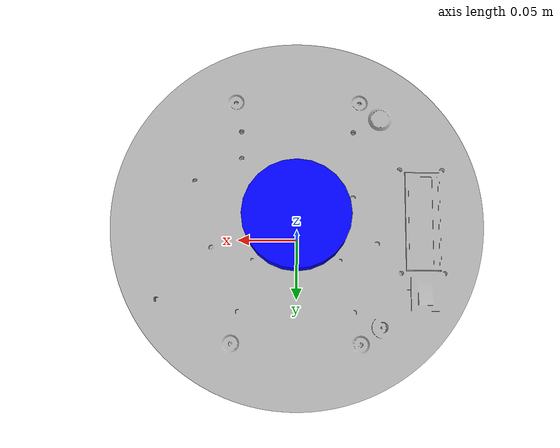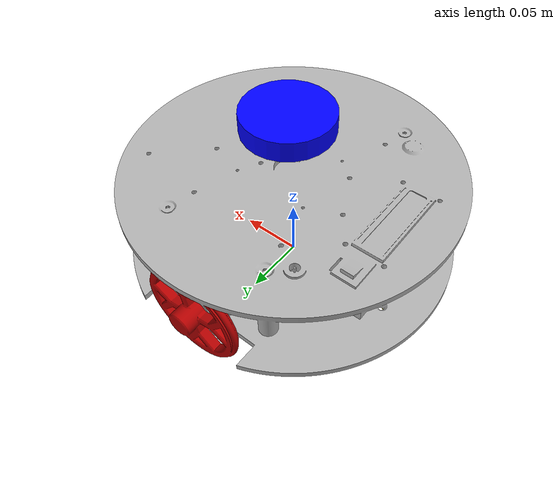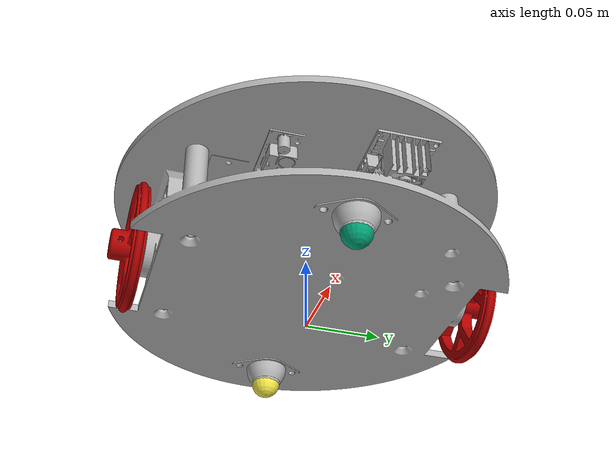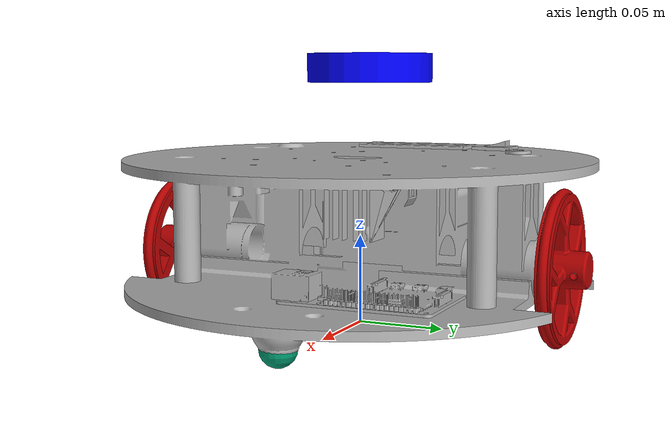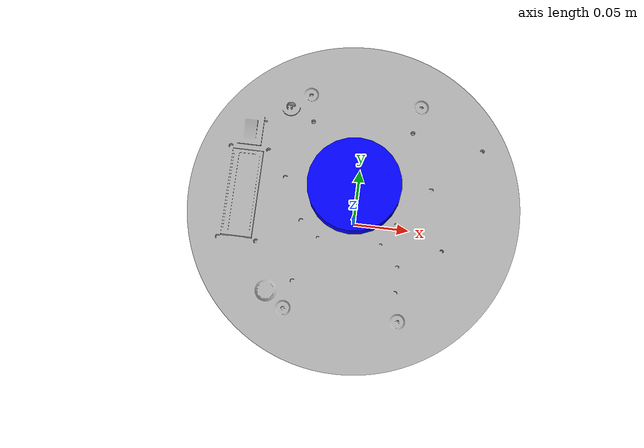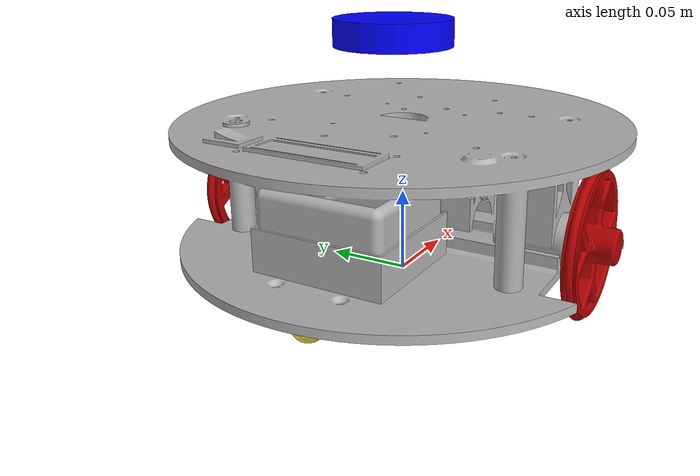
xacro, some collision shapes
<?xml version="1.0"?>
<robot xmlns:xacro="http://www.ros.org/wiki/xacro" name="rosni_robot">

  <xacro:include filename="$(find rosni2_description)/urdf/base/base.xacro"/>
  <xacro:include filename="$(find rosni2_description)/urdf/wheels/right_wheel.xacro"/>
  <xacro:include filename="$(find rosni2_description)/urdf/wheels/left_wheel.xacro"/>
  <xacro:include filename="$(find rosni2_description)/urdf/sensors/lidar.xacro"/>

  <xacro:include filename="$(find rosni2_description)/ros2_control/ros2_control.xacro"/>
  <xacro:include filename="$(find rosni2_description)/gazebo/rosni.gazebo.xacro"/>

  <link name="base_footprint" />

  <xacro:base name="base" parent="base_footprint">
    <origin xyz="0 0 0.02" rpy="0 0 -1.5707"/>
  </xacro:base>

  <xacro:right_wheel name="right_wheel" parent="base">
    <origin xyz="0.108 0 0.019" rpy="0 -1.5707 0"/>
  </xacro:right_wheel>

  <xacro:left_wheel name="left_wheel" parent="base">
    <origin xyz="-0.108 0 0.019" rpy="0 -1.5707 0"/>
  </xacro:left_wheel>

  <xacro:lidar parent="base">
    <origin xyz="-0.006 0 0.125" rpy="0 0 0"/>
  </xacro:lidar>

  <xacro:rosni_ros2_control/>
  <xacro:rosni_gazebo/>

</robot>

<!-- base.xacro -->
<robot xmlns:xacro="http://www.ros.org/wiki/xacro" name="rosni_robot">
  <xacro:macro name="base" params="name parent *origin">
    <link name="${name}_link">
       <inertial>
      <origin xyz="0 0 0" rpy="0 0 0"/>
      <mass value="8.2573504e-01"/>
      <inertia ixx="2.2124416e-03" ixy="-1.2294101e-05" ixz="3.4938785e-05"
               iyy="2.1193702e-03" iyz="-5.0120904e-06"
               izz="2.0064271e-03" />
    </inertial>
      <visual>
        <origin xyz="-0.1325 0.1325 -0.02" rpy="1.5707 0 0"/>
				<geometry>
        	<mesh filename="file://$(find rosni2_description)/meshes/base.stl" scale="0.001 0.001 0.001"/>
      	</geometry>
        <material name="gray">
          <color rgba="0.7 0.7 0.7 1"/>
        </material>
      </visual>
      <collision>
        <origin xyz="0. 0. 0.038" rpy="0 0 0"/>
				<geometry>
           <cylinder radius="0.13" length="0.08"/>
        </geometry>
      </collision>
    </link>

    <joint name="${name}_joint" type="fixed">
      <xacro:insert_block name="origin"/>
      <parent link="${parent}"/>
      <child link="${name}_link"/>
    </joint>

    <link name="crazy_wheel_front_link">
    <inertial>
      <origin xyz="0 0 0" />
      <mass value="0.005" />
      <inertia ixx="0.001" ixy="0.0" ixz="0.0"
               iyy="0.001" iyz="0.0"
               izz="0.001" />
    </inertial>
      <visual>
        <origin xyz="0.0 0.0 0.0" rpy="0 0 0"/>
				<geometry>
          <sphere radius="0.01"/>
        </geometry>
      </visual>
      <collision>
        <origin xyz="0.0 0.0 0.0" rpy="0 0 0"/>
				<geometry>
          <sphere radius="0.01"/>
        </geometry>
      </collision>
    </link>

    <joint name="crazy_front_joint" type="fixed">
      <origin xyz="0 0.1 -0.013" rpy="0 0 1.5707"/>
      <parent link="${name}_link"/>
      <child link="crazy_wheel_front_link"/>
    </joint>

    <link name="crazy_wheel_back_link">
    <inertial>
      <origin xyz="0 0 0" />
      <mass value="0.005" />
      <inertia ixx="0.001" ixy="0.0" ixz="0.0"
               iyy="0.001" iyz="0.0"
               izz="0.001" />
    </inertial>
      <visual>
        <origin xyz="0.0 0.0 0.0" rpy="0 0 0"/>
				<geometry>
          <sphere radius="0.01"/>
        </geometry>
      </visual>
      <collision>
        <origin xyz="0.0 0.0 0.0" rpy="0 0 0"/>
				<geometry>
          <sphere radius="0.01"/>
        </geometry>
      </collision>
    </link>

    <joint name="crazy_back_joint" type="fixed">
      <origin xyz="0 -0.1 -0.013" rpy="0 0 1.5707"/>
      <parent link="${name}_link"/>
      <child link="crazy_wheel_back_link"/>
    </joint>

  </xacro:macro>
</robot>

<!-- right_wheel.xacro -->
<robot xmlns:xacro="http://www.ros.org/wiki/xacro" name="rosni_robot">
  <xacro:macro name="right_wheel" params="name parent *origin">
    <link name="${name}_link" type="wheel">
      <inertial>
      <origin xyz="0 0 0" />
      <mass value="2.8498940e-02" />
      <inertia ixx="1.1175580e-05" ixy="-4.2369783e-11" ixz="-5.9381719e-09"
               iyy="1.1192413e-05" iyz="-1.4400107e-11"
               izz="2.0712558e-05" />
      </inertial>
      <visual>
        <origin xyz="-0.0425 -0.0425 -0.047" rpy="0 0 0"/>
				<geometry>
        	<mesh filename="file://$(find rosni2_description)/meshes/right_wheel.stl" scale="0.001 0.001 0.001"/>
      	</geometry>
        <material name="red">
          <color rgba="0.7 0 0 1"/>
        </material>
      </visual>
      <collision>
        <origin xyz="0. 0. -0.01" rpy="0 0 0"/>
				<geometry>
           <cylinder radius="0.0425" length="0.01"/>
        </geometry>
      </collision>
    </link>
    <joint name="${name}_joint" type="continuous">
      <xacro:insert_block name="origin"/>
      <axis xyz="0 0 1"/>
      <parent link="${parent}_link" />
      <child link="${name}_link" />
    </joint>
  </xacro:macro>
</robot>

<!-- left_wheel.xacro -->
<robot xmlns:xacro="http://www.ros.org/wiki/xacro" name="rosni_robot">
  <xacro:macro name="left_wheel" params="name parent *origin">
    <link name="${name}_link" type="wheel">
      <inertial>
      <origin xyz="0 0 0" />
      <mass value="2.8498940e-02" />
      <inertia ixx="1.1175580e-05" ixy="-4.2369783e-11" ixz="-5.9381719e-09"
               iyy="1.1192413e-05" iyz="-1.4400107e-11"
               izz="2.0712558e-05" />
      </inertial>
      <visual>
        <origin xyz="-0.0425 -0.0425 0" rpy="0 0 0"/>
				<geometry>
        	<mesh filename="file://$(find rosni2_description)/meshes/left_wheel.stl" scale="0.001 0.001 0.001"/>
      	</geometry>
        <material name="red">
          <color rgba="0.7 0 0 1"/>
        </material>
      </visual>
      <collision>
        <origin xyz="0. 0. 0.01" rpy="0 0 0"/>
				<geometry>
           <cylinder radius="0.0425" length="0.01"/>
        </geometry>
      </collision>
    </link>
    <joint name="${name}_joint" type="continuous">
      <xacro:insert_block name="origin"/>
      <axis xyz="0 0 1"/>
      <parent link="${parent}_link"/>
      <child link="${name}_link"/>
    </joint>
  </xacro:macro>
</robot>

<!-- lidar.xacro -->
<robot xmlns:xacro="http://www.ros.org/wiki/xacro" name="rosni_robot">
  <xacro:macro name="lidar" params="parent *origin">
    <link name="laser_frame" type="laser">
      <visual>
        <origin xyz="0 0 0.02" rpy="0 0 0"/>
				<geometry>
        	<mesh filename="file://$(find rosni2_description)/meshes/lidar.stl" scale="0.001 0.001 0.001"/>
      	</geometry>
        <material name="blue">
          <color rgba="0 0 1 1"/>
        </material>
      </visual>
      <collision>
        <origin xyz="0 0 0.0" rpy="0 0 0"/>
				<geometry>
           <cylinder radius="0.035" length="0.016"/>
        </geometry>
      </collision>
    </link>
    <joint name="laser_joint" type="fixed">
      <xacro:insert_block name="origin"/>
      <parent link="${parent}_link" />
      <child link="laser_frame" />
    </joint>
  </xacro:macro>
</robot>
